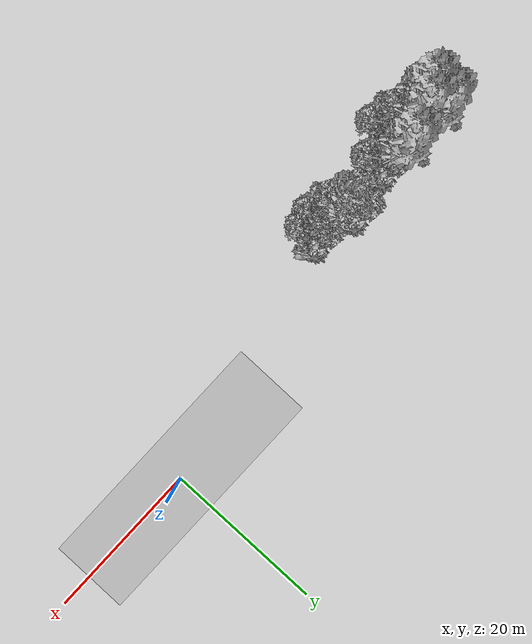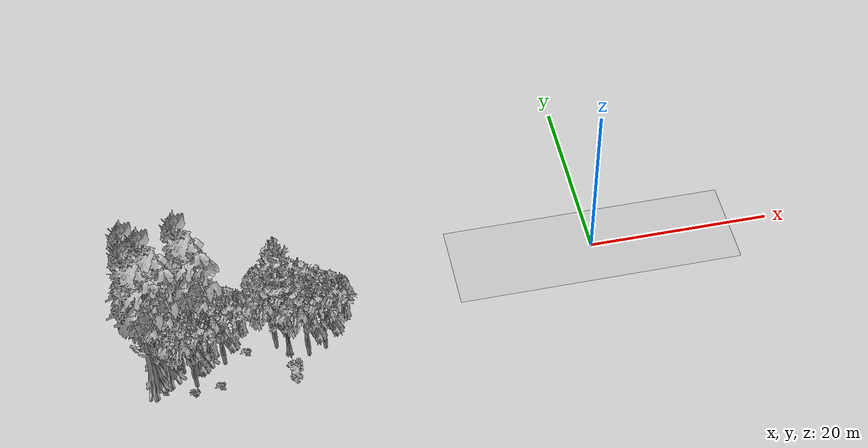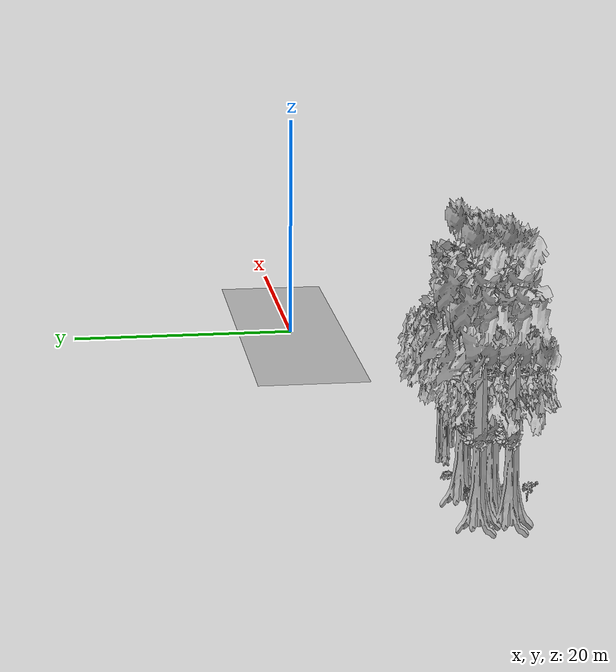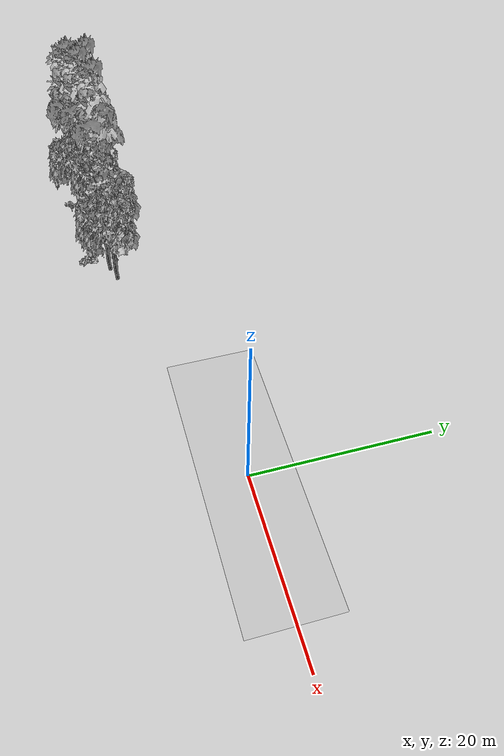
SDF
<sdf version="1.7">
 <world name="default">
  <model name="ground_plane">
   <static>1</static>
   <link name="link">
    <collision name="collision">
     <geometry><plane><normal>0 0 1</normal><size>100 100</size></plane></geometry>
     <surface><contact><ode><min_depth>0.01</min_depth><max_vel>0</max_vel></ode></contact></surface>
    </collision>
    <visual name="grass">
     <cast_shadows>0</cast_shadows>
     <geometry>
      <mesh>
       <scale>0.5814285714285714 0.18142857142857144 0.1</scale>
       <uri>file://grass_plane/meshes/grass_plane.dae</uri>
      </mesh>
     </geometry>
    </visual>
   </link>
  </model>
  <model name="Tree 6">
   <static>1</static>
   <pose>-43.491514775591085 -6.833206282252117 0 1.57079 -0 0</pose>
   <link name="link">
    <collision name="collision">
     <geometry><mesh><scale>3.5 5 3.5</scale><uri>model://tree_4/meshes/tree_4.obj</uri></mesh></geometry>
    </collision>
    <visual name="visual">
     <geometry><mesh><scale>3.5 5 3.5</scale><uri>model://tree_4/meshes/tree_4.obj</uri></mesh></geometry>
    </visual>
   </link>
  </model>
  <model name="Tree 145">
   <static>1</static>
   <pose>-34.68183205625692 -7.497681900184232 0 1.57079 -0 0</pose>
   <link name="link">
    <collision name="collision">
     <geometry><mesh><scale>3.5 5 3.5</scale><uri>model://tree_9/meshes/tree_9.obj</uri></mesh></geometry>
    </collision>
    <visual name="visual">
     <geometry><mesh><scale>3.5 5 3.5</scale><uri>model://tree_9/meshes/tree_9.obj</uri></mesh></geometry>
    </visual>
   </link>
  </model>
  <model name="Tree 149">
   <static>1</static>
   <pose>-36.00563989092677 -6.691481771978051 0 1.57079 -0 0</pose>
   <link name="link">
    <collision name="collision">
     <geometry><mesh><scale>3.5 5 3.5</scale><uri>model://tree_2/meshes/tree_2.obj</uri></mesh></geometry>
    </collision>
    <visual name="visual">
     <geometry><mesh><scale>3.5 5 3.5</scale><uri>model://tree_2/meshes/tree_2.obj</uri></mesh></geometry>
    </visual>
   </link>
  </model>
  <model name="Tree 167">
   <static>1</static>
   <pose>-41.54776788804071 -7.683771414086835 0 1.57079 -0 0</pose>
   <link name="link">
    <collision name="collision">
     <geometry><mesh><scale>3.5 5 3.5</scale><uri>model://tree_2/meshes/tree_2.obj</uri></mesh></geometry>
    </collision>
    <visual name="visual">
     <geometry><mesh><scale>3.5 5 3.5</scale><uri>model://tree_2/meshes/tree_2.obj</uri></mesh></geometry>
    </visual>
   </link>
  </model>
  <model name="Tree 174">
   <static>1</static>
   <pose>-47.08342006835614 -8.142676482822889 0 1.57079 -0 0</pose>
   <link name="link">
    <collision name="collision">
     <geometry><mesh><scale>3.5 5 3.5</scale><uri>model://tree_4/meshes/tree_4.obj</uri></mesh></geometry>
    </collision>
    <visual name="visual">
     <geometry><mesh><scale>3.5 5 3.5</scale><uri>model://tree_4/meshes/tree_4.obj</uri></mesh></geometry>
    </visual>
   </link>
  </model>
  <model name="Tree 226">
   <static>1</static>
   <pose>-32.781449031451245 -8.361896464489842 0 1.57079 -0 0</pose>
   <link name="link">
    <collision name="collision">
     <geometry><mesh><scale>3.5 5 3.5</scale><uri>model://tree_2/meshes/tree_2.obj</uri></mesh></geometry>
    </collision>
    <visual name="visual">
     <geometry><mesh><scale>3.5 5 3.5</scale><uri>model://tree_2/meshes/tree_2.obj</uri></mesh></geometry>
    </visual>
   </link>
  </model>
  <model name="Tree 270">
   <static>1</static>
   <pose>-44.73113252802652 -9.93224869306207 0 1.57079 -0 0</pose>
   <link name="link">
    <collision name="collision">
     <geometry><mesh><scale>3.5 5 3.5</scale><uri>model://tree_2/meshes/tree_2.obj</uri></mesh></geometry>
    </collision>
    <visual name="visual">
     <geometry><mesh><scale>3.5 5 3.5</scale><uri>model://tree_2/meshes/tree_2.obj</uri></mesh></geometry>
    </visual>
   </link>
  </model>
  <model name="Tree 336">
   <static>1</static>
   <pose>-45.87589134847367 -7.968229825444258 0 1.57079 -0 0</pose>
   <link name="link">
    <collision name="collision">
     <geometry><mesh><scale>3.5 5 3.5</scale><uri>model://tree_2/meshes/tree_2.obj</uri></mesh></geometry>
    </collision>
    <visual name="visual">
     <geometry><mesh><scale>3.5 5 3.5</scale><uri>model://tree_2/meshes/tree_2.obj</uri></mesh></geometry>
    </visual>
   </link>
  </model>
  <model name="Tree 366">
   <static>1</static>
   <pose>-30.935904883972245 -7.781304468444495 0 1.57079 -0 0</pose>
   <link name="link">
    <collision name="collision">
     <geometry><mesh><scale>3.5 5 3.5</scale><uri>model://tree_2/meshes/tree_2.obj</uri></mesh></geometry>
    </collision>
    <visual name="visual">
     <geometry><mesh><scale>3.5 5 3.5</scale><uri>model://tree_2/meshes/tree_2.obj</uri></mesh></geometry>
    </visual>
   </link>
  </model>
  <model name="Tree 404">
   <static>1</static>
   <pose>-48.59278195736728 -6.924462542454734 0 1.57079 -0 0</pose>
   <link name="link">
    <collision name="collision">
     <geometry><mesh><scale>3.5 5 3.5</scale><uri>model://tree_4/meshes/tree_4.obj</uri></mesh></geometry>
    </collision>
    <visual name="visual">
     <geometry><mesh><scale>3.5 5 3.5</scale><uri>model://tree_4/meshes/tree_4.obj</uri></mesh></geometry>
    </visual>
   </link>
  </model>
  <model name="Tree 417">
   <static>1</static>
   <pose>-44.919492752231854 -7.9732903274574065 0 1.57079 -0 0</pose>
   <link name="link">
    <collision name="collision">
     <geometry><mesh><scale>3.5 5 3.5</scale><uri>model://tree_2/meshes/tree_2.obj</uri></mesh></geometry>
    </collision>
    <visual name="visual">
     <geometry><mesh><scale>3.5 5 3.5</scale><uri>model://tree_2/meshes/tree_2.obj</uri></mesh></geometry>
    </visual>
   </link>
  </model>
  <model name="Tree 422">
   <static>1</static>
   <pose>-48.69727425099298 -9.230968925992036 0 1.57079 -0 0</pose>
   <link name="link">
    <collision name="collision">
     <geometry><mesh><scale>3.5 5 3.5</scale><uri>model://tree_4/meshes/tree_4.obj</uri></mesh></geometry>
    </collision>
    <visual name="visual">
     <geometry><mesh><scale>3.5 5 3.5</scale><uri>model://tree_4/meshes/tree_4.obj</uri></mesh></geometry>
    </visual>
   </link>
  </model>
  <model name="Bush 60">
   <static>1</static>
   <pose>-48.06144412483517 -9.991576822039326 0 1.57079 -0 0</pose>
   <link name="link">
    <collision name="collision">
     <geometry><mesh><scale>2 2 2</scale><uri>model://bush_2/meshes/bush_2.obj</uri></mesh></geometry>
     <surface><contact><collide_without_contact>false</collide_without_contact></contact></surface>
    </collision>
    <visual name="visual">
     <geometry><mesh><scale>2 2 2</scale><uri>model://bush_2/meshes/bush_2.obj</uri></mesh></geometry>
    </visual>
   </link>
  </model>
  <model name="Bush 113">
   <static>1</static>
   <pose>-39.17355096636298 -6.733765025812877 0 1.57079 -0 0</pose>
   <link name="link">
    <collision name="collision">
     <geometry><mesh><scale>2 2 2</scale><uri>model://bush_2/meshes/bush_2.obj</uri></mesh></geometry>
     <surface><contact><collide_without_contact>false</collide_without_contact></contact></surface>
    </collision>
    <visual name="visual">
     <geometry><mesh><scale>2 2 2</scale><uri>model://bush_2/meshes/bush_2.obj</uri></mesh></geometry>
    </visual>
   </link>
  </model>
  <model name="Bush 132">
   <static>1</static>
   <pose>-46.104597787833704 -7.74962863041266 0 1.57079 -0 0</pose>
   <link name="link">
    <collision name="collision">
     <geometry><mesh><scale>2 2 2</scale><uri>model://bush_5/meshes/bush_5.obj</uri></mesh></geometry>
     <surface><contact><collide_without_contact>false</collide_without_contact></contact></surface>
    </collision>
    <visual name="visual">
     <geometry><mesh><scale>2 2 2</scale><uri>model://bush_5/meshes/bush_5.obj</uri></mesh></geometry>
    </visual>
   </link>
  </model>
  <model name="Bush 161">
   <static>1</static>
   <pose>-44.86187144678318 -11.386161451658122 0 1.57079 -0 0</pose>
   <link name="link">
    <collision name="collision">
     <geometry><mesh><scale>2 2 2</scale><uri>model://bush_5/meshes/bush_5.obj</uri></mesh></geometry>
     <surface><contact><collide_without_contact>false</collide_without_contact></contact></surface>
    </collision>
    <visual name="visual">
     <geometry><mesh><scale>2 2 2</scale><uri>model://bush_5/meshes/bush_5.obj</uri></mesh></geometry>
    </visual>
   </link>
  </model>
  <model name="Bush 171">
   <static>1</static>
   <pose>-44.67532994311527 -7.323126799004163 0 1.57079 -0 0</pose>
   <link name="link">
    <collision name="collision">
     <geometry><mesh><scale>2 2 2</scale><uri>model://bush_4/meshes/bush_4.obj</uri></mesh></geometry>
     <surface><contact><collide_without_contact>false</collide_without_contact></contact></surface>
    </collision>
    <visual name="visual">
     <geometry><mesh><scale>2 2 2</scale><uri>model://bush_4/meshes/bush_4.obj</uri></mesh></geometry>
    </visual>
   </link>
  </model>
  <model name="Bush 178">
   <static>1</static>
   <pose>-34.369177845111174 -11.23526841387877 0 1.57079 -0 0</pose>
   <link name="link">
    <collision name="collision">
     <geometry><mesh><scale>2 2 2</scale><uri>model://bush_3/meshes/bush_3.obj</uri></mesh></geometry>
     <surface><contact><collide_without_contact>false</collide_without_contact></contact></surface>
    </collision>
    <visual name="visual">
     <geometry><mesh><scale>2 2 2</scale><uri>model://bush_3/meshes/bush_3.obj</uri></mesh></geometry>
    </visual>
   </link>
  </model>
  <model name="Bush 180">
   <static>1</static>
   <pose>-44.44650202342089 -8.280729251486305 0 1.57079 -0 0</pose>
   <link name="link">
    <collision name="collision">
     <geometry><mesh><scale>2 2 2</scale><uri>model://bush_2/meshes/bush_2.obj</uri></mesh></geometry>
     <surface><contact><collide_without_contact>false</collide_without_contact></contact></surface>
    </collision>
    <visual name="visual">
     <geometry><mesh><scale>2 2 2</scale><uri>model://bush_2/meshes/bush_2.obj</uri></mesh></geometry>
    </visual>
   </link>
  </model>
  <model name="Bush 204">
   <static>1</static>
   <pose>-34.37169872454183 -10.417277697786874 0 1.57079 -0 0</pose>
   <link name="link">
    <collision name="collision">
     <geometry><mesh><scale>2 2 2</scale><uri>model://bush_1/meshes/bush_1.obj</uri></mesh></geometry>
     <surface><contact><collide_without_contact>false</collide_without_contact></contact></surface>
    </collision>
    <visual name="visual">
     <geometry><mesh><scale>2 2 2</scale><uri>model://bush_1/meshes/bush_1.obj</uri></mesh></geometry>
    </visual>
   </link>
  </model>
  <model name="Bush 231">
   <static>1</static>
   <pose>-42.24748431467823 -10.529741742315638 0 1.57079 -0 0</pose>
   <link name="link">
    <collision name="collision">
     <geometry><mesh><scale>2 2 2</scale><uri>model://bush_2/meshes/bush_2.obj</uri></mesh></geometry>
     <surface><contact><collide_without_contact>false</collide_without_contact></contact></surface>
    </collision>
    <visual name="visual">
     <geometry><mesh><scale>2 2 2</scale><uri>model://bush_2/meshes/bush_2.obj</uri></mesh></geometry>
    </visual>
   </link>
  </model>
  <model name="Bush 284">
   <static>1</static>
   <pose>-48.7327176883453 -7.603917815738126 0 1.57079 -0 0</pose>
   <link name="link">
    <collision name="collision">
     <geometry><mesh><scale>2 2 2</scale><uri>model://bush_2/meshes/bush_2.obj</uri></mesh></geometry>
     <surface><contact><collide_without_contact>false</collide_without_contact></contact></surface>
    </collision>
    <visual name="visual">
     <geometry><mesh><scale>2 2 2</scale><uri>model://bush_2/meshes/bush_2.obj</uri></mesh></geometry>
    </visual>
   </link>
  </model>
 </world>
</sdf>
